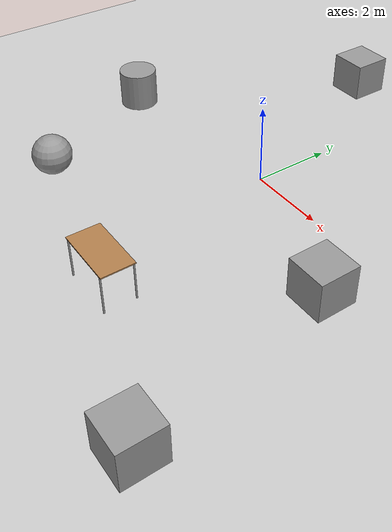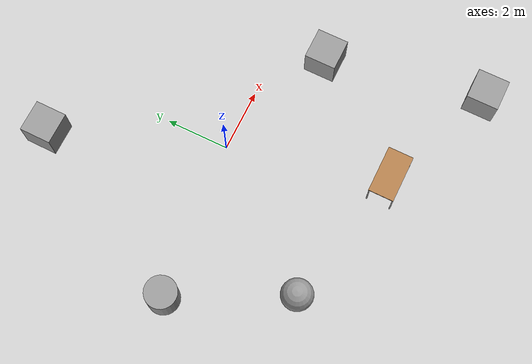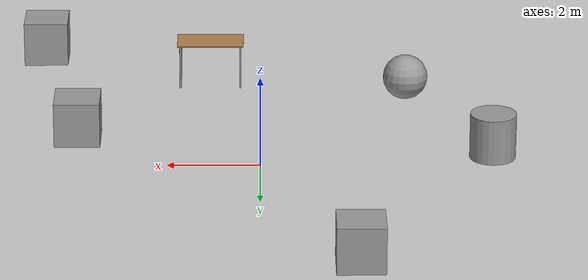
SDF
<sdf version="1.7">
 <world name="default">
  <light name="sun" type="directional">
   <pose>0 0 10 0 -0 0</pose>
   <diffuse>0.8 0.8 0.8 1</diffuse>
   <specular>0.2 0.2 0.2 1</specular>
   <attenuation>
    <range>1000</range>
    <constant>0.9</constant>
    <linear>0.01</linear>
    <quadratic>0.001</quadratic>
   </attenuation>
   <direction>-0.5 0.1 -0.9</direction>
   <spot><inner_angle>0</inner_angle><outer_angle>0</outer_angle><falloff>0</falloff></spot>
  </light>
  <model name="ground_plane">
   <static>1</static>
   <link name="link">
    <collision name="collision">
     <geometry><plane><normal>0 0 1</normal><size>100 100</size></plane></geometry>
     <surface><friction><ode><mu>100</mu><mu2>50</mu2></ode></friction></surface>
    </collision>
    <visual name="visual">
     <cast_shadows>0</cast_shadows>
     <geometry><plane><normal>0 0 1</normal><size>100 100</size></plane></geometry>
     <material>
      <script><uri>file://media/materials/scripts/gazebo.material</uri><name>Gazebo/Grey</name></script>
     </material>
    </visual>
   </link>
  </model>
  <physics type="ode">
   <max_step_size>0.01</max_step_size>
   <real_time_factor>1</real_time_factor>
   <real_time_update_rate>100</real_time_update_rate>
  </physics>
  <scene><ambient>0.4 0.4 0.4 1</ambient><background>0.7 0.7 0.7 1</background><shadows>1</shadows></scene>
  <model name="table_4">
   <static>1</static>
   <link name="link">
    <collision name="surface">
     <pose>0 0 1 0 -0 0</pose>
     <geometry><box><size>1.5 0.8 0.03</size></box></geometry>
    </collision>
    <visual name="visual1">
     <pose>0 0 1 0 -0 0</pose>
     <geometry><box><size>1.5 0.8 0.03</size></box></geometry>
     <material>
      <script><uri>file://media/materials/scripts/gazebo.material</uri><name>Gazebo/Wood</name></script>
     </material>
    </visual>
    <collision name="front_left_leg">
     <pose>0.68 0.38 0.5 0 -0 0</pose>
     <geometry><cylinder><radius>0.02</radius><length>1</length></cylinder></geometry>
    </collision>
    <visual name="front_left_leg">
     <pose>0.68 0.38 0.5 0 -0 0</pose>
     <geometry><cylinder><radius>0.02</radius><length>1</length></cylinder></geometry>
     <material>
      <script><uri>file://media/materials/scripts/gazebo.material</uri><name>Gazebo/Grey</name></script>
     </material>
    </visual>
    <collision name="front_right_leg">
     <pose>0.68 -0.38 0.5 0 -0 0</pose>
     <geometry><cylinder><radius>0.02</radius><length>1</length></cylinder></geometry>
    </collision>
    <visual name="front_right_leg">
     <pose>0.68 -0.38 0.5 0 -0 0</pose>
     <geometry><cylinder><radius>0.02</radius><length>1</length></cylinder></geometry>
     <material>
      <script><uri>file://media/materials/scripts/gazebo.material</uri><name>Gazebo/Grey</name></script>
     </material>
    </visual>
    <collision name="back_right_leg">
     <pose>-0.68 -0.38 0.5 0 -0 0</pose>
     <geometry><cylinder><radius>0.02</radius><length>1</length></cylinder></geometry>
    </collision>
    <visual name="back_right_leg">
     <pose>-0.68 -0.38 0.5 0 -0 0</pose>
     <geometry><cylinder><radius>0.02</radius><length>1</length></cylinder></geometry>
     <material>
      <script><uri>file://media/materials/scripts/gazebo.material</uri><name>Gazebo/Grey</name></script>
     </material>
    </visual>
    <collision name="back_left_leg">
     <pose>-0.68 0.38 0.5 0 -0 0</pose>
     <geometry><cylinder><radius>0.02</radius><length>1</length></cylinder></geometry>
    </collision>
    <visual name="back_left_leg">
     <pose>-0.68 0.38 0.5 0 -0 0</pose>
     <geometry><cylinder><radius>0.02</radius><length>1</length></cylinder></geometry>
     <material>
      <script><uri>file://media/materials/scripts/gazebo.material</uri><name>Gazebo/Grey</name></script>
     </material>
    </visual>
    <velocity_decay><linear>0</linear><angular>0</angular></velocity_decay>
   </link>
   <pose>1.12468 -4.9608 0 0 -0 0</pose>
  </model>
  <gravity>0 0 -9.8</gravity>
  <magnetic_field>6e-06 2.3e-05 -4.2e-05</magnetic_field>
  <atmosphere type="adiabatic"/>
  <spherical_coordinates>
   <surface_model>EARTH_WGS84</surface_model>
   <latitude_deg>0</latitude_deg>
   <longitude_deg>0</longitude_deg>
   <elevation>0</elevation>
   <heading_deg>0</heading_deg>
  </spherical_coordinates>
  <model name="unit_box">
   <pose>3.98506 -1.5143 0.499798 0.000404 1e-06 0</pose>
   <link name="link">
    <inertial>
     <mass>1</mass>
     <inertia>
      <ixx>0.166667</ixx>
      <ixy>0</ixy>
      <ixz>0</ixz>
      <iyy>0.166667</iyy>
      <iyz>0</iyz>
      <izz>0.166667</izz>
     </inertia>
    </inertial>
    <collision name="collision"><geometry><box><size>1 1 1</size></box></geometry></collision>
    <visual name="visual">
     <geometry><box><size>1 1 1</size></box></geometry>
     <material>
      <script><name>Gazebo/Grey</name><uri>file://media/materials/scripts/gazebo.material</uri></script>
     </material>
    </visual>
   </link>
  </model>
  <model name="unit_cylinder">
   <pose>-5.01443 -0.492205 0.49912 0 0 -1.1e-05</pose>
   <link name="link">
    <inertial>
     <mass>1</mass>
     <inertia><ixx>0.145833</ixx><ixy>0</ixy><ixz>0</ixz><iyy>0.145833</iyy><iyz>0</iyz><izz>0.125</izz></inertia>
    </inertial>
    <collision name="collision">
     <geometry><cylinder><radius>0.5</radius><length>1</length></cylinder></geometry>
    </collision>
    <visual name="visual">
     <geometry><cylinder><radius>0.5</radius><length>1</length></cylinder></geometry>
     <material>
      <script><name>Gazebo/Grey</name><uri>file://media/materials/scripts/gazebo.material</uri></script>
     </material>
    </visual>
   </link>
  </model>
  <model name="unit_sphere">
   <pose>-3.27096 -3.99477 0.5 0 -0 0</pose>
   <link name="link">
    <inertial>
     <mass>1</mass>
     <inertia><ixx>0.1</ixx><ixy>0</ixy><ixz>0</ixz><iyy>0.1</iyy><iyz>0</iyz><izz>0.1</izz></inertia>
    </inertial>
    <collision name="collision"><geometry><sphere><radius>0.5</radius></sphere></geometry></collision>
    <visual name="visual">
     <geometry><sphere><radius>0.5</radius></sphere></geometry>
     <material>
      <script><name>Gazebo/Grey</name><uri>file://media/materials/scripts/gazebo.material</uri></script>
     </material>
    </visual>
   </link>
  </model>
  <model name="unit_box_0">
   <pose>-2.0005 5.15708 0.49912 0 -0 1e-06</pose>
   <link name="link">
    <inertial>
     <mass>1</mass>
     <inertia>
      <ixx>0.166667</ixx>
      <ixy>0</ixy>
      <ixz>0</ixz>
      <iyy>0.166667</iyy>
      <iyz>0</iyz>
      <izz>0.166667</izz>
     </inertia>
    </inertial>
    <collision name="collision"><geometry><box><size>1 1 1</size></box></geometry></collision>
    <visual name="visual">
     <geometry><box><size>1 1 1</size></box></geometry>
     <material>
      <script><name>Gazebo/Grey</name><uri>file://media/materials/scripts/gazebo.material</uri></script>
     </material>
    </visual>
   </link>
  </model>
  <model name="unit_box_1">
   <pose>4.94119 -6.53316 0.49912 0 -0 0</pose>
   <link name="link">
    <inertial>
     <mass>1</mass>
     <inertia>
      <ixx>0.166667</ixx>
      <ixy>0</ixy>
      <ixz>0</ixz>
      <iyy>0.166667</iyy>
      <iyz>0</iyz>
      <izz>0.166667</izz>
     </inertia>
    </inertial>
    <collision name="collision"><geometry><box><size>1 1 1</size></box></geometry></collision>
    <visual name="visual">
     <geometry><box><size>1 1 1</size></box></geometry>
     <material>
      <script><name>Gazebo/Grey</name><uri>file://media/materials/scripts/gazebo.material</uri></script>
     </material>
    </visual>
   </link>
  </model>
 </world>
</sdf>
